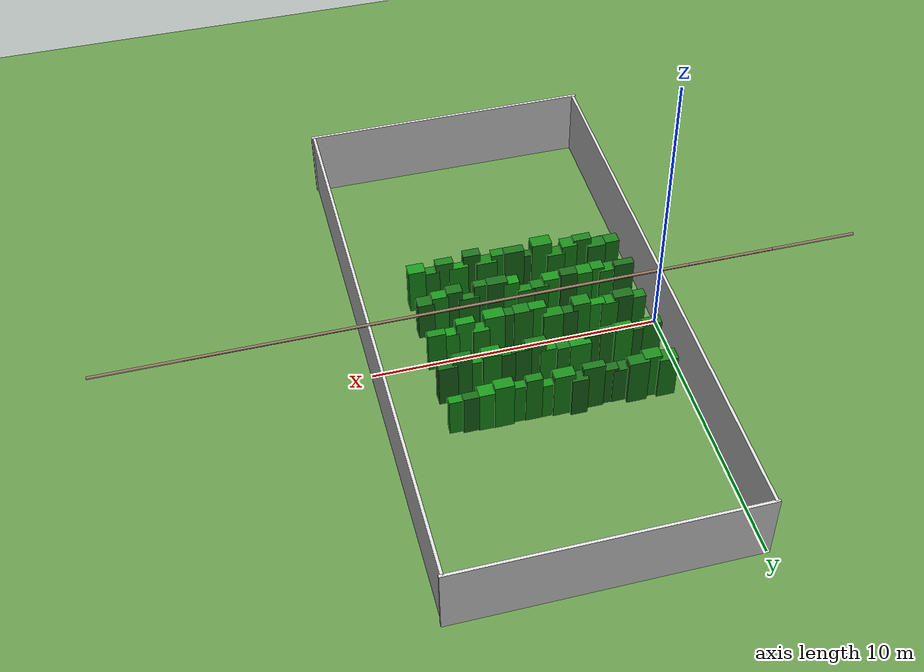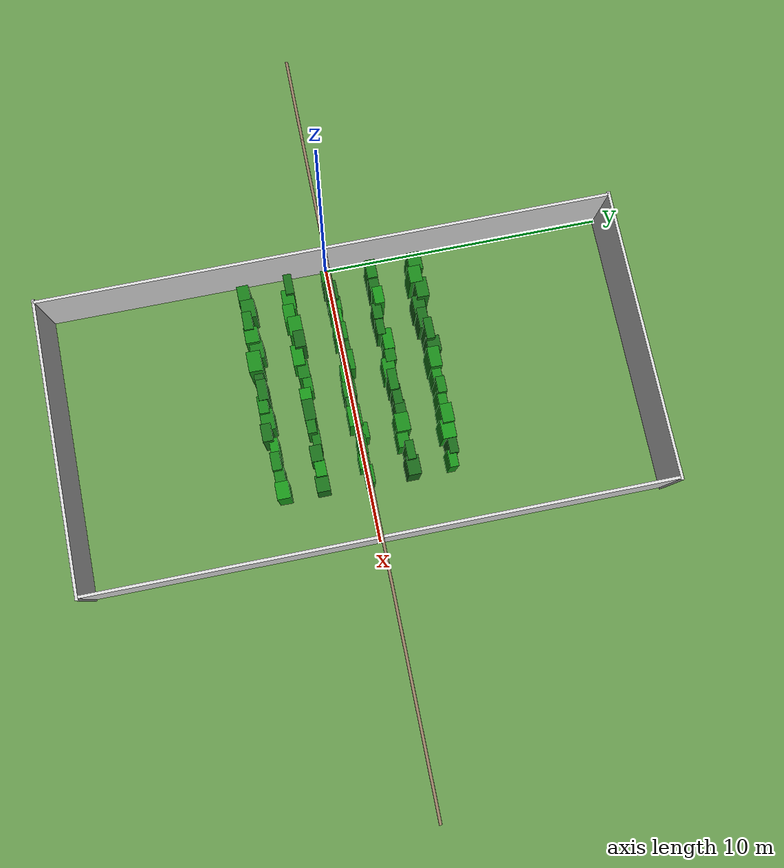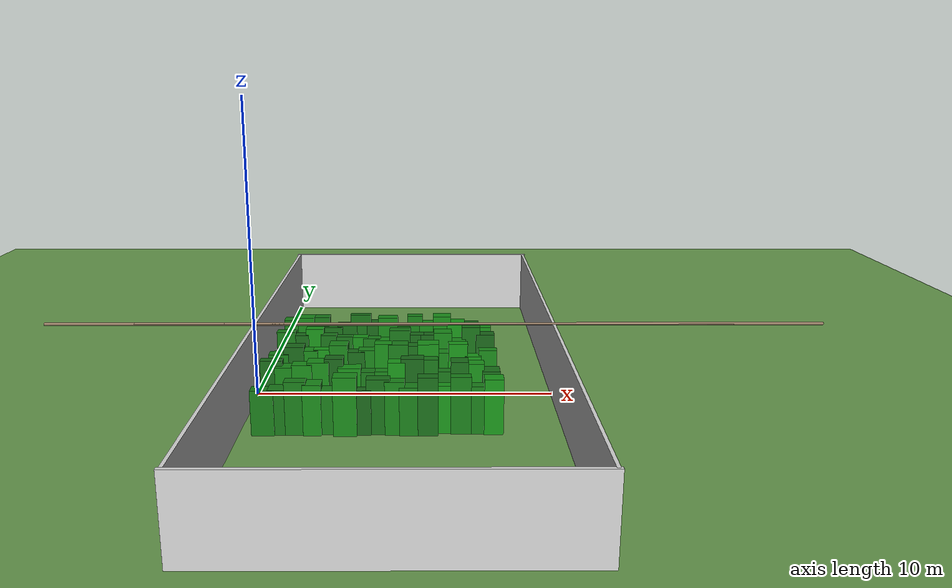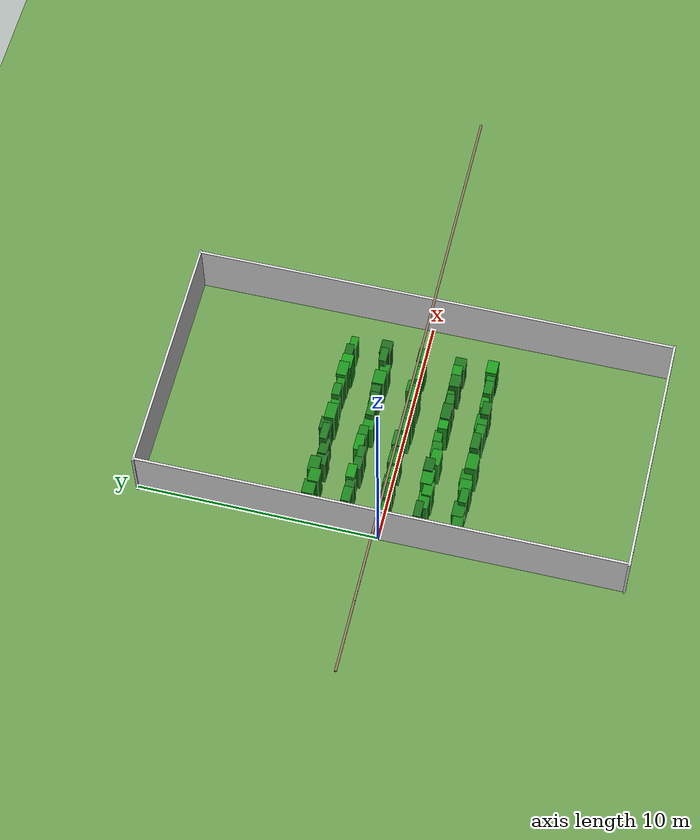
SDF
<?xml version="1.0" ?>
<sdf version="1.9">
  <world name="greenhouse">

    <physics name="1ms" type="ignored">
      <max_step_size>0.001</max_step_size>
      <real_time_factor>1.0</real_time_factor>
    </physics>

    <!-- Gazebo Harmonic (gz sim 8) native plugin filenames -->
    <plugin filename="gz-sim-physics-system"
            name="gz::sim::systems::Physics"/>
    <plugin filename="gz-sim-user-commands-system"
            name="gz::sim::systems::UserCommands"/>
    <plugin filename="gz-sim-scene-broadcaster-system"
            name="gz::sim::systems::SceneBroadcaster"/>
    <plugin filename="gz-sim-sensors-system"
            name="gz::sim::systems::Sensors">
      <render_engine>ogre2</render_engine>
    </plugin>
    <plugin filename="gz-sim-imu-system"
            name="gz::sim::systems::Imu"/>

    <!-- Lighting -->
    <light type="directional" name="sun">
      <cast_shadows>true</cast_shadows>
      <pose>0 0 10 0 0 0</pose>
      <diffuse>0.8 0.8 0.8 1</diffuse>
      <specular>0.2 0.2 0.2 1</specular>
      <attenuation>
        <range>1000</range>
        <constant>0.9</constant>
        <linear>0.01</linear>
        <quadratic>0.001</quadratic>
      </attenuation>
      <direction>-0.5 0.1 -0.9</direction>
    </light>

    <!-- Ground plane -->
    <model name="ground_plane">
      <static>true</static>
      <link name="link">
        <collision name="collision">
          <geometry>
            <plane><normal>0 0 1</normal><size>100 100</size></plane>
          </geometry>
        </collision>
        <visual name="visual">
          <geometry>
            <plane><normal>0 0 1</normal><size>100 100</size></plane>
          </geometry>
          <material>
            <ambient>0.4 0.6 0.3 1</ambient>
            <diffuse>0.4 0.6 0.3 1</diffuse>
          </material>
        </visual>
      </link>
    </model>

    <!-- South wall (y = -10) -->
    <model name="wall_south">
      <static>true</static>
      <pose>5.0 -10.0 1.25 0 0 0</pose>
      <link name="link">
        <collision name="col">
          <geometry><box><size>10.2 0.1 2.5</size></box></geometry>
        </collision>
        <visual name="vis">
          <geometry><box><size>10.2 0.1 2.5</size></box></geometry>
          <material><ambient>0.85 0.85 0.85 1</ambient><diffuse>0.85 0.85 0.85 1</diffuse></material>
        </visual>
      </link>
    </model>

    <!-- North wall (y = +10) -->
    <model name="wall_north">
      <static>true</static>
      <pose>5.0 10.0 1.25 0 0 0</pose>
      <link name="link">
        <collision name="col">
          <geometry><box><size>10.2 0.1 2.5</size></box></geometry>
        </collision>
        <visual name="vis">
          <geometry><box><size>10.2 0.1 2.5</size></box></geometry>
          <material><ambient>0.85 0.85 0.85 1</ambient><diffuse>0.85 0.85 0.85 1</diffuse></material>
        </visual>
      </link>
    </model>

    <!-- West wall (x = 0) -->
    <model name="wall_west">
      <static>true</static>
      <pose>0.0 0.0 1.25 0 0 0</pose>
      <link name="link">
        <collision name="col">
          <geometry><box><size>0.1 20.0 2.5</size></box></geometry>
        </collision>
        <visual name="vis">
          <geometry><box><size>0.1 20.0 2.5</size></box></geometry>
          <material><ambient>0.85 0.85 0.85 1</ambient><diffuse>0.85 0.85 0.85 1</diffuse></material>
        </visual>
      </link>
    </model>

    <!-- East wall (x = 10) -->
    <model name="wall_east">
      <static>true</static>
      <pose>10.0 0.0 1.25 0 0 0</pose>
      <link name="link">
        <collision name="col">
          <geometry><box><size>0.1 20.0 2.5</size></box></geometry>
        </collision>
        <visual name="vis">
          <geometry><box><size>0.1 20.0 2.5</size></box></geometry>
          <material><ambient>0.85 0.85 0.85 1</ambient><diffuse>0.85 0.85 0.85 1</diffuse></material>
        </visual>
      </link>
    </model>

    <!-- Roof beams (3 cross-beams running E-W at x=3, x=6, x=9) -->
    <model name="beam_1">
      <static>true</static>
      <pose>3.0 0.0 2.5 0 1.5708 0</pose>
      <link name="link">
        <collision name="col"><geometry><cylinder><radius>0.05</radius><length>20.0</length></cylinder></geometry></collision>
        <visual name="vis">
          <geometry><cylinder><radius>0.05</radius><length>20.0</length></cylinder></geometry>
          <material><ambient>0.6 0.5 0.4 1</ambient><diffuse>0.6 0.5 0.4 1</diffuse></material>
        </visual>
      </link>
    </model>
    <model name="beam_2">
      <static>true</static>
      <pose>6.0 0.0 2.5 0 1.5708 0</pose>
      <link name="link">
        <collision name="col"><geometry><cylinder><radius>0.05</radius><length>20.0</length></cylinder></geometry></collision>
        <visual name="vis">
          <geometry><cylinder><radius>0.05</radius><length>20.0</length></cylinder></geometry>
          <material><ambient>0.6 0.5 0.4 1</ambient><diffuse>0.6 0.5 0.4 1</diffuse></material>
        </visual>
      </link>
    </model>
    <model name="beam_3">
      <static>true</static>
      <pose>9.0 0.0 2.5 0 1.5708 0</pose>
      <link name="link">
        <collision name="col"><geometry><cylinder><radius>0.05</radius><length>20.0</length></cylinder></geometry></collision>
        <visual name="vis">
          <geometry><cylinder><radius>0.05</radius><length>20.0</length></cylinder></geometry>
          <material><ambient>0.6 0.5 0.4 1</ambient><diffuse>0.6 0.5 0.4 1</diffuse></material>
        </visual>
      </link>
    </model>

    <!-- Row y=-3.0 -->
    <model name="row_n3_0"><static>true</static><pose>0.8 -3.029 0.725 0 0 0</pose><link name="l"><collision name="c"><geometry><box><size>0.705 0.414 1.45</size></box></geometry></collision><visual name="v"><geometry><box><size>0.705 0.414 1.45</size></box></geometry><material><ambient>0.08 0.44 0.08 1</ambient><diffuse>0.1 0.49 0.1 1</diffuse></material></visual></link></model>
    <model name="row_n3_1"><static>true</static><pose>1.3 -2.966 0.733 0 0 0</pose><link name="l"><collision name="c"><geometry><box><size>0.657 0.476 1.465</size></box></geometry></collision><visual name="v"><geometry><box><size>0.657 0.476 1.465</size></box></geometry><material><ambient>0.08 0.42 0.08 1</ambient><diffuse>0.1 0.47 0.1 1</diffuse></material></visual></link></model>
    <model name="row_n3_2"><static>true</static><pose>1.8 -3.054 0.867 0 0 0</pose><link name="l"><collision name="c"><geometry><box><size>0.648 0.321 1.733</size></box></geometry></collision><visual name="v"><geometry><box><size>0.648 0.321 1.733</size></box></geometry><material><ambient>0.08 0.44 0.08 1</ambient><diffuse>0.1 0.49 0.1 1</diffuse></material></visual></link></model>
    <model name="row_n3_3"><static>true</static><pose>2.3 -3.008 0.822 0 0 0</pose><link name="l"><collision name="c"><geometry><box><size>0.558 0.475 1.644</size></box></geometry></collision><visual name="v"><geometry><box><size>0.558 0.475 1.644</size></box></geometry><material><ambient>0.08 0.49 0.08 1</ambient><diffuse>0.1 0.54 0.1 1</diffuse></material></visual></link></model>
    <model name="row_n3_4"><static>true</static><pose>2.8 -2.933 0.706 0 0 0</pose><link name="l"><collision name="c"><geometry><box><size>0.633 0.458 1.412</size></box></geometry></collision><visual name="v"><geometry><box><size>0.633 0.458 1.412</size></box></geometry><material><ambient>0.08 0.44 0.08 1</ambient><diffuse>0.1 0.49 0.1 1</diffuse></material></visual></link></model>
    <model name="row_n3_5"><static>true</static><pose>3.3 -3.065 0.946 0 0 0</pose><link name="l"><collision name="c"><geometry><box><size>0.712 0.469 1.892</size></box></geometry></collision><visual name="v"><geometry><box><size>0.712 0.469 1.892</size></box></geometry><material><ambient>0.08 0.49 0.08 1</ambient><diffuse>0.1 0.54 0.1 1</diffuse></material></visual></link></model>
    <model name="row_n3_6"><static>true</static><pose>3.8 -3.037 0.723 0 0 0</pose><link name="l"><collision name="c"><geometry><box><size>0.572 0.312 1.446</size></box></geometry></collision><visual name="v"><geometry><box><size>0.572 0.312 1.446</size></box></geometry><material><ambient>0.08 0.35 0.08 1</ambient><diffuse>0.1 0.4 0.1 1</diffuse></material></visual></link></model>
    <model name="row_n3_7"><static>true</static><pose>4.3 -2.99 0.895 0 0 0</pose><link name="l"><collision name="c"><geometry><box><size>0.721 0.338 1.79</size></box></geometry></collision><visual name="v"><geometry><box><size>0.721 0.338 1.79</size></box></geometry><material><ambient>0.08 0.39 0.08 1</ambient><diffuse>0.1 0.44 0.1 1</diffuse></material></visual></link></model>
    <model name="row_n3_8"><static>true</static><pose>4.8 -3.054 0.865 0 0 0</pose><link name="l"><collision name="c"><geometry><box><size>0.608 0.344 1.729</size></box></geometry></collision><visual name="v"><geometry><box><size>0.608 0.344 1.729</size></box></geometry><material><ambient>0.08 0.47 0.08 1</ambient><diffuse>0.1 0.52 0.1 1</diffuse></material></visual></link></model>
    <model name="row_n3_9"><static>true</static><pose>5.3 -3.008 0.773 0 0 0</pose><link name="l"><collision name="c"><geometry><box><size>0.729 0.454 1.547</size></box></geometry></collision><visual name="v"><geometry><box><size>0.729 0.454 1.547</size></box></geometry><material><ambient>0.08 0.45 0.08 1</ambient><diffuse>0.1 0.5 0.1 1</diffuse></material></visual></link></model>
    <model name="row_n3_10"><static>true</static><pose>5.8 -3.098 0.946 0 0 0</pose><link name="l"><collision name="c"><geometry><box><size>0.606 0.346 1.892</size></box></geometry></collision><visual name="v"><geometry><box><size>0.606 0.346 1.892</size></box></geometry><material><ambient>0.08 0.38 0.08 1</ambient><diffuse>0.1 0.43 0.1 1</diffuse></material></visual></link></model>
    <model name="row_n3_11"><static>true</static><pose>6.3 -2.941 0.773 0 0 0</pose><link name="l"><collision name="c"><geometry><box><size>0.68 0.295 1.546</size></box></geometry></collision><visual name="v"><geometry><box><size>0.68 0.295 1.546</size></box></geometry><material><ambient>0.08 0.53 0.08 1</ambient><diffuse>0.1 0.58 0.1 1</diffuse></material></visual></link></model>
    <model name="row_n3_12"><static>true</static><pose>6.8 -2.973 0.92 0 0 0</pose><link name="l"><collision name="c"><geometry><box><size>0.624 0.321 1.84</size></box></geometry></collision><visual name="v"><geometry><box><size>0.624 0.321 1.84</size></box></geometry><material><ambient>0.08 0.45 0.08 1</ambient><diffuse>0.1 0.5 0.1 1</diffuse></material></visual></link></model>
    <model name="row_n3_13"><static>true</static><pose>7.3 -2.947 0.773 0 0 0</pose><link name="l"><collision name="c"><geometry><box><size>0.616 0.349 1.546</size></box></geometry></collision><visual name="v"><geometry><box><size>0.616 0.349 1.546</size></box></geometry><material><ambient>0.08 0.45 0.08 1</ambient><diffuse>0.1 0.5 0.1 1</diffuse></material></visual></link></model>
    <model name="row_n3_14"><static>true</static><pose>7.8 -2.926 0.889 0 0 0</pose><link name="l"><collision name="c"><geometry><box><size>0.59 0.454 1.778</size></box></geometry></collision><visual name="v"><geometry><box><size>0.59 0.454 1.778</size></box></geometry><material><ambient>0.08 0.54 0.08 1</ambient><diffuse>0.1 0.59 0.1 1</diffuse></material></visual></link></model>

    <!-- Row y=-1.5 -->
    <model name="row_n15_0"><static>true</static><pose>0.8 -1.427 0.89 0 0 0</pose><link name="l"><collision name="c"><geometry><box><size>0.709 0.292 1.78</size></box></geometry></collision><visual name="v"><geometry><box><size>0.709 0.292 1.78</size></box></geometry><material><ambient>0.08 0.37 0.08 1</ambient><diffuse>0.1 0.42 0.1 1</diffuse></material></visual></link></model>
    <model name="row_n15_1"><static>true</static><pose>1.3 -1.525 0.801 0 0 0</pose><link name="l"><collision name="c"><geometry><box><size>0.73 0.437 1.603</size></box></geometry></collision><visual name="v"><geometry><box><size>0.73 0.437 1.603</size></box></geometry><material><ambient>0.08 0.48 0.08 1</ambient><diffuse>0.1 0.53 0.1 1</diffuse></material></visual></link></model>
    <model name="row_n15_2"><static>true</static><pose>1.8 -1.59 0.852 0 0 0</pose><link name="l"><collision name="c"><geometry><box><size>0.63 0.394 1.704</size></box></geometry></collision><visual name="v"><geometry><box><size>0.63 0.394 1.704</size></box></geometry><material><ambient>0.08 0.5 0.08 1</ambient><diffuse>0.1 0.55 0.1 1</diffuse></material></visual></link></model>
    <model name="row_n15_3"><static>true</static><pose>2.3 -1.469 0.878 0 0 0</pose><link name="l"><collision name="c"><geometry><box><size>0.692 0.464 1.757</size></box></geometry></collision><visual name="v"><geometry><box><size>0.692 0.464 1.757</size></box></geometry><material><ambient>0.08 0.5 0.08 1</ambient><diffuse>0.1 0.55 0.1 1</diffuse></material></visual></link></model>
    <model name="row_n15_4"><static>true</static><pose>2.8 -1.415 0.924 0 0 0</pose><link name="l"><collision name="c"><geometry><box><size>0.588 0.38 1.848</size></box></geometry></collision><visual name="v"><geometry><box><size>0.588 0.38 1.848</size></box></geometry><material><ambient>0.08 0.35 0.08 1</ambient><diffuse>0.1 0.4 0.1 1</diffuse></material></visual></link></model>
    <model name="row_n15_5"><static>true</static><pose>3.3 -1.574 0.801 0 0 0</pose><link name="l"><collision name="c"><geometry><box><size>0.726 0.407 1.603</size></box></geometry></collision><visual name="v"><geometry><box><size>0.726 0.407 1.603</size></box></geometry><material><ambient>0.08 0.52 0.08 1</ambient><diffuse>0.1 0.57 0.1 1</diffuse></material></visual></link></model>
    <model name="row_n15_6"><static>true</static><pose>3.8 -1.489 0.719 0 0 0</pose><link name="l"><collision name="c"><geometry><box><size>0.601 0.399 1.438</size></box></geometry></collision><visual name="v"><geometry><box><size>0.601 0.399 1.438</size></box></geometry><material><ambient>0.08 0.43 0.08 1</ambient><diffuse>0.1 0.48 0.1 1</diffuse></material></visual></link></model>
    <model name="row_n15_7"><static>true</static><pose>4.3 -1.425 0.709 0 0 0</pose><link name="l"><collision name="c"><geometry><box><size>0.611 0.313 1.418</size></box></geometry></collision><visual name="v"><geometry><box><size>0.611 0.313 1.418</size></box></geometry><material><ambient>0.08 0.47 0.08 1</ambient><diffuse>0.1 0.52 0.1 1</diffuse></material></visual></link></model>
    <model name="row_n15_8"><static>true</static><pose>4.8 -1.56 0.891 0 0 0</pose><link name="l"><collision name="c"><geometry><box><size>0.551 0.396 1.783</size></box></geometry></collision><visual name="v"><geometry><box><size>0.551 0.396 1.783</size></box></geometry><material><ambient>0.08 0.54 0.08 1</ambient><diffuse>0.1 0.59 0.1 1</diffuse></material></visual></link></model>
    <model name="row_n15_9"><static>true</static><pose>5.3 -1.556 0.947 0 0 0</pose><link name="l"><collision name="c"><geometry><box><size>0.718 0.388 1.894</size></box></geometry></collision><visual name="v"><geometry><box><size>0.718 0.388 1.894</size></box></geometry><material><ambient>0.08 0.36 0.08 1</ambient><diffuse>0.1 0.41 0.1 1</diffuse></material></visual></link></model>
    <model name="row_n15_10"><static>true</static><pose>5.8 -1.577 0.936 0 0 0</pose><link name="l"><collision name="c"><geometry><box><size>0.624 0.316 1.873</size></box></geometry></collision><visual name="v"><geometry><box><size>0.624 0.316 1.873</size></box></geometry><material><ambient>0.08 0.42 0.08 1</ambient><diffuse>0.1 0.47 0.1 1</diffuse></material></visual></link></model>
    <model name="row_n15_11"><static>true</static><pose>6.3 -1.496 0.723 0 0 0</pose><link name="l"><collision name="c"><geometry><box><size>0.723 0.288 1.445</size></box></geometry></collision><visual name="v"><geometry><box><size>0.723 0.288 1.445</size></box></geometry><material><ambient>0.08 0.42 0.08 1</ambient><diffuse>0.1 0.47 0.1 1</diffuse></material></visual></link></model>
    <model name="row_n15_12"><static>true</static><pose>6.8 -1.589 0.91 0 0 0</pose><link name="l"><collision name="c"><geometry><box><size>0.554 0.414 1.821</size></box></geometry></collision><visual name="v"><geometry><box><size>0.554 0.414 1.821</size></box></geometry><material><ambient>0.08 0.38 0.08 1</ambient><diffuse>0.1 0.43 0.1 1</diffuse></material></visual></link></model>
    <model name="row_n15_13"><static>true</static><pose>7.3 -1.547 0.863 0 0 0</pose><link name="l"><collision name="c"><geometry><box><size>0.574 0.375 1.725</size></box></geometry></collision><visual name="v"><geometry><box><size>0.574 0.375 1.725</size></box></geometry><material><ambient>0.08 0.52 0.08 1</ambient><diffuse>0.1 0.57 0.1 1</diffuse></material></visual></link></model>
    <model name="row_n15_14"><static>true</static><pose>7.8 -1.577 0.756 0 0 0</pose><link name="l"><collision name="c"><geometry><box><size>0.569 0.46 1.512</size></box></geometry></collision><visual name="v"><geometry><box><size>0.569 0.46 1.512</size></box></geometry><material><ambient>0.08 0.39 0.08 1</ambient><diffuse>0.1 0.44 0.1 1</diffuse></material></visual></link></model>

    <!-- Row y=0.0 -->
    <model name="row_0_0"><static>true</static><pose>0.8 -0.074 0.755 0 0 0</pose><link name="l"><collision name="c"><geometry><box><size>0.654 0.364 1.51</size></box></geometry></collision><visual name="v"><geometry><box><size>0.654 0.364 1.51</size></box></geometry><material><ambient>0.08 0.45 0.08 1</ambient><diffuse>0.1 0.5 0.1 1</diffuse></material></visual></link></model>
    <model name="row_0_1"><static>true</static><pose>1.3 -0.013 0.877 0 0 0</pose><link name="l"><collision name="c"><geometry><box><size>0.675 0.404 1.754</size></box></geometry></collision><visual name="v"><geometry><box><size>0.675 0.404 1.754</size></box></geometry><material><ambient>0.08 0.36 0.08 1</ambient><diffuse>0.1 0.41 0.1 1</diffuse></material></visual></link></model>
    <model name="row_0_2"><static>true</static><pose>1.8 0.013 0.805 0 0 0</pose><link name="l"><collision name="c"><geometry><box><size>0.595 0.438 1.611</size></box></geometry></collision><visual name="v"><geometry><box><size>0.595 0.438 1.611</size></box></geometry><material><ambient>0.08 0.49 0.08 1</ambient><diffuse>0.1 0.54 0.1 1</diffuse></material></visual></link></model>
    <model name="row_0_3"><static>true</static><pose>2.3 0.031 0.817 0 0 0</pose><link name="l"><collision name="c"><geometry><box><size>0.701 0.313 1.633</size></box></geometry></collision><visual name="v"><geometry><box><size>0.701 0.313 1.633</size></box></geometry><material><ambient>0.08 0.54 0.08 1</ambient><diffuse>0.1 0.59 0.1 1</diffuse></material></visual></link></model>
    <model name="row_0_4"><static>true</static><pose>2.8 0.005 0.912 0 0 0</pose><link name="l"><collision name="c"><geometry><box><size>0.606 0.46 1.824</size></box></geometry></collision><visual name="v"><geometry><box><size>0.606 0.46 1.824</size></box></geometry><material><ambient>0.08 0.47 0.08 1</ambient><diffuse>0.1 0.52 0.1 1</diffuse></material></visual></link></model>
    <model name="row_0_5"><static>true</static><pose>3.3 0.059 0.772 0 0 0</pose><link name="l"><collision name="c"><geometry><box><size>0.737 0.368 1.545</size></box></geometry></collision><visual name="v"><geometry><box><size>0.737 0.368 1.545</size></box></geometry><material><ambient>0.08 0.37 0.08 1</ambient><diffuse>0.1 0.42 0.1 1</diffuse></material></visual></link></model>
    <model name="row_0_6"><static>true</static><pose>3.8 0.088 0.798 0 0 0</pose><link name="l"><collision name="c"><geometry><box><size>0.694 0.409 1.596</size></box></geometry></collision><visual name="v"><geometry><box><size>0.694 0.409 1.596</size></box></geometry><material><ambient>0.08 0.47 0.08 1</ambient><diffuse>0.1 0.52 0.1 1</diffuse></material></visual></link></model>
    <model name="row_0_7"><static>true</static><pose>4.3 -0.083 0.939 0 0 0</pose><link name="l"><collision name="c"><geometry><box><size>0.581 0.363 1.877</size></box></geometry></collision><visual name="v"><geometry><box><size>0.581 0.363 1.877</size></box></geometry><material><ambient>0.08 0.51 0.08 1</ambient><diffuse>0.1 0.56 0.1 1</diffuse></material></visual></link></model>
    <model name="row_0_8"><static>true</static><pose>4.8 -0.083 0.93 0 0 0</pose><link name="l"><collision name="c"><geometry><box><size>0.66 0.439 1.861</size></box></geometry></collision><visual name="v"><geometry><box><size>0.66 0.439 1.861</size></box></geometry><material><ambient>0.08 0.44 0.08 1</ambient><diffuse>0.1 0.49 0.1 1</diffuse></material></visual></link></model>
    <model name="row_0_9"><static>true</static><pose>5.3 -0.088 0.909 0 0 0</pose><link name="l"><collision name="c"><geometry><box><size>0.647 0.379 1.819</size></box></geometry></collision><visual name="v"><geometry><box><size>0.647 0.379 1.819</size></box></geometry><material><ambient>0.08 0.39 0.08 1</ambient><diffuse>0.1 0.44 0.1 1</diffuse></material></visual></link></model>
    <model name="row_0_10"><static>true</static><pose>5.8 -0.082 0.937 0 0 0</pose><link name="l"><collision name="c"><geometry><box><size>0.7 0.444 1.874</size></box></geometry></collision><visual name="v"><geometry><box><size>0.7 0.444 1.874</size></box></geometry><material><ambient>0.08 0.52 0.08 1</ambient><diffuse>0.1 0.57 0.1 1</diffuse></material></visual></link></model>
    <model name="row_0_11"><static>true</static><pose>6.3 0.084 0.757 0 0 0</pose><link name="l"><collision name="c"><geometry><box><size>0.552 0.438 1.515</size></box></geometry></collision><visual name="v"><geometry><box><size>0.552 0.438 1.515</size></box></geometry><material><ambient>0.08 0.48 0.08 1</ambient><diffuse>0.1 0.53 0.1 1</diffuse></material></visual></link></model>
    <model name="row_0_12"><static>true</static><pose>6.8 -0.021 0.922 0 0 0</pose><link name="l"><collision name="c"><geometry><box><size>0.644 0.311 1.845</size></box></geometry></collision><visual name="v"><geometry><box><size>0.644 0.311 1.845</size></box></geometry><material><ambient>0.08 0.54 0.08 1</ambient><diffuse>0.1 0.59 0.1 1</diffuse></material></visual></link></model>
    <model name="row_0_13"><static>true</static><pose>7.3 -0.045 0.71 0 0 0</pose><link name="l"><collision name="c"><geometry><box><size>0.555 0.366 1.42</size></box></geometry></collision><visual name="v"><geometry><box><size>0.555 0.366 1.42</size></box></geometry><material><ambient>0.08 0.54 0.08 1</ambient><diffuse>0.1 0.59 0.1 1</diffuse></material></visual></link></model>
    <model name="row_0_14"><static>true</static><pose>7.8 0.042 0.794 0 0 0</pose><link name="l"><collision name="c"><geometry><box><size>0.617 0.289 1.588</size></box></geometry></collision><visual name="v"><geometry><box><size>0.617 0.289 1.588</size></box></geometry><material><ambient>0.08 0.49 0.08 1</ambient><diffuse>0.1 0.54 0.1 1</diffuse></material></visual></link></model>

    <!-- Row y=1.5 -->
    <model name="row_p15_0"><static>true</static><pose>0.8 1.489 0.88 0 0 0</pose><link name="l"><collision name="c"><geometry><box><size>0.649 0.352 1.761</size></box></geometry></collision><visual name="v"><geometry><box><size>0.649 0.352 1.761</size></box></geometry><material><ambient>0.08 0.44 0.08 1</ambient><diffuse>0.1 0.49 0.1 1</diffuse></material></visual></link></model>
    <model name="row_p15_1"><static>true</static><pose>1.3 1.49 0.819 0 0 0</pose><link name="l"><collision name="c"><geometry><box><size>0.555 0.347 1.638</size></box></geometry></collision><visual name="v"><geometry><box><size>0.555 0.347 1.638</size></box></geometry><material><ambient>0.08 0.37 0.08 1</ambient><diffuse>0.1 0.42 0.1 1</diffuse></material></visual></link></model>
    <model name="row_p15_2"><static>true</static><pose>1.8 1.543 0.925 0 0 0</pose><link name="l"><collision name="c"><geometry><box><size>0.609 0.348 1.851</size></box></geometry></collision><visual name="v"><geometry><box><size>0.609 0.348 1.851</size></box></geometry><material><ambient>0.08 0.53 0.08 1</ambient><diffuse>0.1 0.58 0.1 1</diffuse></material></visual></link></model>
    <model name="row_p15_3"><static>true</static><pose>2.3 1.412 0.835 0 0 0</pose><link name="l"><collision name="c"><geometry><box><size>0.557 0.326 1.669</size></box></geometry></collision><visual name="v"><geometry><box><size>0.557 0.326 1.669</size></box></geometry><material><ambient>0.08 0.4 0.08 1</ambient><diffuse>0.1 0.45 0.1 1</diffuse></material></visual></link></model>
    <model name="row_p15_4"><static>true</static><pose>2.8 1.406 0.798 0 0 0</pose><link name="l"><collision name="c"><geometry><box><size>0.662 0.28 1.596</size></box></geometry></collision><visual name="v"><geometry><box><size>0.662 0.28 1.596</size></box></geometry><material><ambient>0.08 0.4 0.08 1</ambient><diffuse>0.1 0.45 0.1 1</diffuse></material></visual></link></model>
    <model name="row_p15_5"><static>true</static><pose>3.3 1.582 0.767 0 0 0</pose><link name="l"><collision name="c"><geometry><box><size>0.729 0.357 1.534</size></box></geometry></collision><visual name="v"><geometry><box><size>0.729 0.357 1.534</size></box></geometry><material><ambient>0.08 0.52 0.08 1</ambient><diffuse>0.1 0.57 0.1 1</diffuse></material></visual></link></model>
    <model name="row_p15_6"><static>true</static><pose>3.8 1.553 0.75 0 0 0</pose><link name="l"><collision name="c"><geometry><box><size>0.601 0.365 1.499</size></box></geometry></collision><visual name="v"><geometry><box><size>0.601 0.365 1.499</size></box></geometry><material><ambient>0.08 0.44 0.08 1</ambient><diffuse>0.1 0.49 0.1 1</diffuse></material></visual></link></model>
    <model name="row_p15_7"><static>true</static><pose>4.3 1.427 0.733 0 0 0</pose><link name="l"><collision name="c"><geometry><box><size>0.704 0.431 1.466</size></box></geometry></collision><visual name="v"><geometry><box><size>0.704 0.431 1.466</size></box></geometry><material><ambient>0.08 0.5 0.08 1</ambient><diffuse>0.1 0.55 0.1 1</diffuse></material></visual></link></model>
    <model name="row_p15_8"><static>true</static><pose>4.8 1.441 0.914 0 0 0</pose><link name="l"><collision name="c"><geometry><box><size>0.724 0.316 1.829</size></box></geometry></collision><visual name="v"><geometry><box><size>0.724 0.316 1.829</size></box></geometry><material><ambient>0.08 0.42 0.08 1</ambient><diffuse>0.1 0.47 0.1 1</diffuse></material></visual></link></model>
    <model name="row_p15_9"><static>true</static><pose>5.3 1.487 0.828 0 0 0</pose><link name="l"><collision name="c"><geometry><box><size>0.677 0.31 1.655</size></box></geometry></collision><visual name="v"><geometry><box><size>0.677 0.31 1.655</size></box></geometry><material><ambient>0.08 0.37 0.08 1</ambient><diffuse>0.1 0.42 0.1 1</diffuse></material></visual></link></model>
    <model name="row_p15_10"><static>true</static><pose>5.8 1.502 0.826 0 0 0</pose><link name="l"><collision name="c"><geometry><box><size>0.562 0.366 1.651</size></box></geometry></collision><visual name="v"><geometry><box><size>0.562 0.366 1.651</size></box></geometry><material><ambient>0.08 0.36 0.08 1</ambient><diffuse>0.1 0.41 0.1 1</diffuse></material></visual></link></model>
    <model name="row_p15_11"><static>true</static><pose>6.3 1.465 0.877 0 0 0</pose><link name="l"><collision name="c"><geometry><box><size>0.636 0.475 1.754</size></box></geometry></collision><visual name="v"><geometry><box><size>0.636 0.475 1.754</size></box></geometry><material><ambient>0.08 0.49 0.08 1</ambient><diffuse>0.1 0.54 0.1 1</diffuse></material></visual></link></model>
    <model name="row_p15_12"><static>true</static><pose>6.8 1.4 0.732 0 0 0</pose><link name="l"><collision name="c"><geometry><box><size>0.629 0.394 1.464</size></box></geometry></collision><visual name="v"><geometry><box><size>0.629 0.394 1.464</size></box></geometry><material><ambient>0.08 0.49 0.08 1</ambient><diffuse>0.1 0.54 0.1 1</diffuse></material></visual></link></model>
    <model name="row_p15_13"><static>true</static><pose>7.3 1.525 0.95 0 0 0</pose><link name="l"><collision name="c"><geometry><box><size>0.642 0.29 1.9</size></box></geometry></collision><visual name="v"><geometry><box><size>0.642 0.29 1.9</size></box></geometry><material><ambient>0.08 0.4 0.08 1</ambient><diffuse>0.1 0.45 0.1 1</diffuse></material></visual></link></model>
    <model name="row_p15_14"><static>true</static><pose>7.8 1.542 0.82 0 0 0</pose><link name="l"><collision name="c"><geometry><box><size>0.651 0.441 1.64</size></box></geometry></collision><visual name="v"><geometry><box><size>0.651 0.441 1.64</size></box></geometry><material><ambient>0.08 0.35 0.08 1</ambient><diffuse>0.1 0.4 0.1 1</diffuse></material></visual></link></model>

    <!-- Row y=3.0 -->
    <model name="row_p3_0"><static>true</static><pose>0.8 3.039 0.854 0 0 0</pose><link name="l"><collision name="c"><geometry><box><size>0.634 0.475 1.707</size></box></geometry></collision><visual name="v"><geometry><box><size>0.634 0.475 1.707</size></box></geometry><material><ambient>0.08 0.45 0.08 1</ambient><diffuse>0.1 0.5 0.1 1</diffuse></material></visual></link></model>
    <model name="row_p3_1"><static>true</static><pose>1.3 2.942 0.911 0 0 0</pose><link name="l"><collision name="c"><geometry><box><size>0.588 0.446 1.822</size></box></geometry></collision><visual name="v"><geometry><box><size>0.588 0.446 1.822</size></box></geometry><material><ambient>0.08 0.48 0.08 1</ambient><diffuse>0.1 0.53 0.1 1</diffuse></material></visual></link></model>
    <model name="row_p3_2"><static>true</static><pose>1.8 3.069 0.902 0 0 0</pose><link name="l"><collision name="c"><geometry><box><size>0.69 0.423 1.805</size></box></geometry></collision><visual name="v"><geometry><box><size>0.69 0.423 1.805</size></box></geometry><material><ambient>0.08 0.42 0.08 1</ambient><diffuse>0.1 0.47 0.1 1</diffuse></material></visual></link></model>
    <model name="row_p3_3"><static>true</static><pose>2.3 2.905 0.736 0 0 0</pose><link name="l"><collision name="c"><geometry><box><size>0.651 0.424 1.472</size></box></geometry></collision><visual name="v"><geometry><box><size>0.651 0.424 1.472</size></box></geometry><material><ambient>0.08 0.38 0.08 1</ambient><diffuse>0.1 0.43 0.1 1</diffuse></material></visual></link></model>
    <model name="row_p3_4"><static>true</static><pose>2.8 2.924 0.775 0 0 0</pose><link name="l"><collision name="c"><geometry><box><size>0.717 0.345 1.551</size></box></geometry></collision><visual name="v"><geometry><box><size>0.717 0.345 1.551</size></box></geometry><material><ambient>0.08 0.37 0.08 1</ambient><diffuse>0.1 0.42 0.1 1</diffuse></material></visual></link></model>
    <model name="row_p3_5"><static>true</static><pose>3.3 3.01 0.946 0 0 0</pose><link name="l"><collision name="c"><geometry><box><size>0.744 0.29 1.892</size></box></geometry></collision><visual name="v"><geometry><box><size>0.744 0.29 1.892</size></box></geometry><material><ambient>0.08 0.4 0.08 1</ambient><diffuse>0.1 0.45 0.1 1</diffuse></material></visual></link></model>
    <model name="row_p3_6"><static>true</static><pose>3.8 3.09 0.797 0 0 0</pose><link name="l"><collision name="c"><geometry><box><size>0.553 0.456 1.595</size></box></geometry></collision><visual name="v"><geometry><box><size>0.553 0.456 1.595</size></box></geometry><material><ambient>0.08 0.36 0.08 1</ambient><diffuse>0.1 0.41 0.1 1</diffuse></material></visual></link></model>
    <model name="row_p3_7"><static>true</static><pose>4.3 2.998 0.902 0 0 0</pose><link name="l"><collision name="c"><geometry><box><size>0.709 0.412 1.804</size></box></geometry></collision><visual name="v"><geometry><box><size>0.709 0.412 1.804</size></box></geometry><material><ambient>0.08 0.49 0.08 1</ambient><diffuse>0.1 0.54 0.1 1</diffuse></material></visual></link></model>
    <model name="row_p3_8"><static>true</static><pose>4.8 2.994 0.733 0 0 0</pose><link name="l"><collision name="c"><geometry><box><size>0.638 0.327 1.466</size></box></geometry></collision><visual name="v"><geometry><box><size>0.638 0.327 1.466</size></box></geometry><material><ambient>0.08 0.5 0.08 1</ambient><diffuse>0.1 0.55 0.1 1</diffuse></material></visual></link></model>
    <model name="row_p3_9"><static>true</static><pose>5.3 3.007 0.929 0 0 0</pose><link name="l"><collision name="c"><geometry><box><size>0.554 0.311 1.859</size></box></geometry></collision><visual name="v"><geometry><box><size>0.554 0.311 1.859</size></box></geometry><material><ambient>0.08 0.46 0.08 1</ambient><diffuse>0.1 0.51 0.1 1</diffuse></material></visual></link></model>
    <model name="row_p3_10"><static>true</static><pose>5.8 2.978 0.81 0 0 0</pose><link name="l"><collision name="c"><geometry><box><size>0.671 0.31 1.62</size></box></geometry></collision><visual name="v"><geometry><box><size>0.671 0.31 1.62</size></box></geometry><material><ambient>0.08 0.49 0.08 1</ambient><diffuse>0.1 0.54 0.1 1</diffuse></material></visual></link></model>
    <model name="row_p3_11"><static>true</static><pose>6.3 2.997 0.929 0 0 0</pose><link name="l"><collision name="c"><geometry><box><size>0.648 0.411 1.859</size></box></geometry></collision><visual name="v"><geometry><box><size>0.648 0.411 1.859</size></box></geometry><material><ambient>0.08 0.51 0.08 1</ambient><diffuse>0.1 0.56 0.1 1</diffuse></material></visual></link></model>
    <model name="row_p3_12"><static>true</static><pose>6.8 2.95 0.819 0 0 0</pose><link name="l"><collision name="c"><geometry><box><size>0.663 0.472 1.638</size></box></geometry></collision><visual name="v"><geometry><box><size>0.663 0.472 1.638</size></box></geometry><material><ambient>0.08 0.54 0.08 1</ambient><diffuse>0.1 0.59 0.1 1</diffuse></material></visual></link></model>
    <model name="row_p3_13"><static>true</static><pose>7.3 2.999 0.789 0 0 0</pose><link name="l"><collision name="c"><geometry><box><size>0.698 0.309 1.579</size></box></geometry></collision><visual name="v"><geometry><box><size>0.698 0.309 1.579</size></box></geometry><material><ambient>0.08 0.36 0.08 1</ambient><diffuse>0.1 0.41 0.1 1</diffuse></material></visual></link></model>
    <model name="row_p3_14"><static>true</static><pose>7.8 2.917 0.728 0 0 0</pose><link name="l"><collision name="c"><geometry><box><size>0.594 0.302 1.455</size></box></geometry></collision><visual name="v"><geometry><box><size>0.594 0.302 1.455</size></box></geometry><material><ambient>0.08 0.52 0.08 1</ambient><diffuse>0.1 0.57 0.1 1</diffuse></material></visual></link></model>

  </world>
</sdf>
